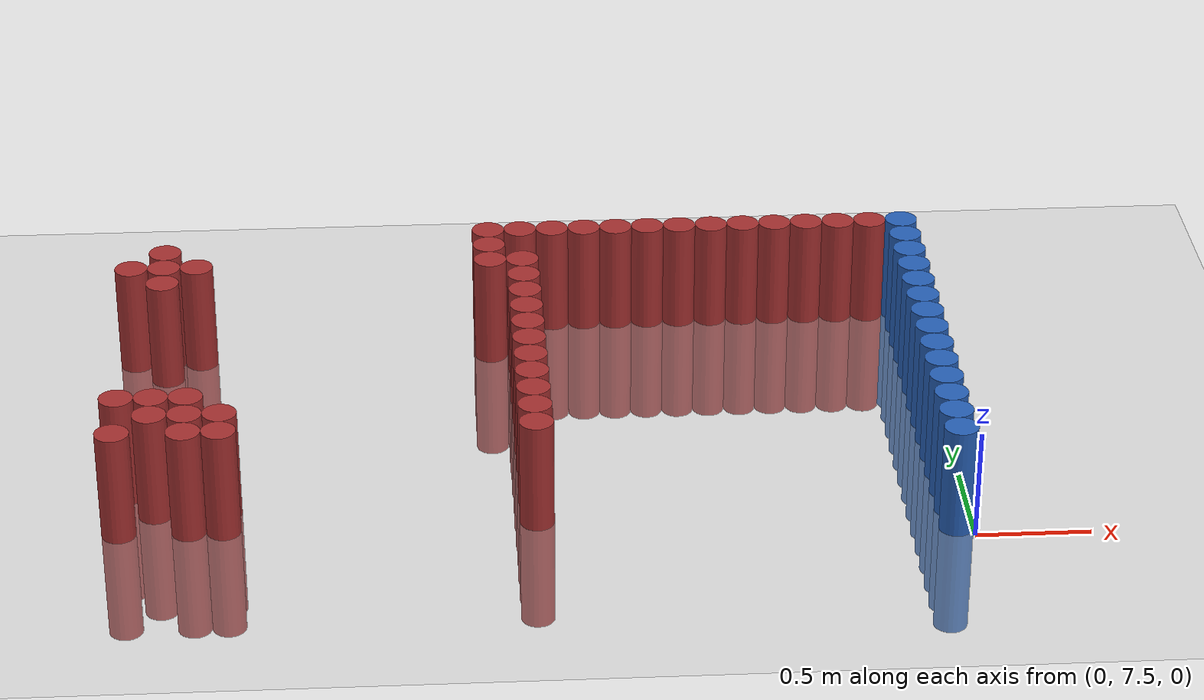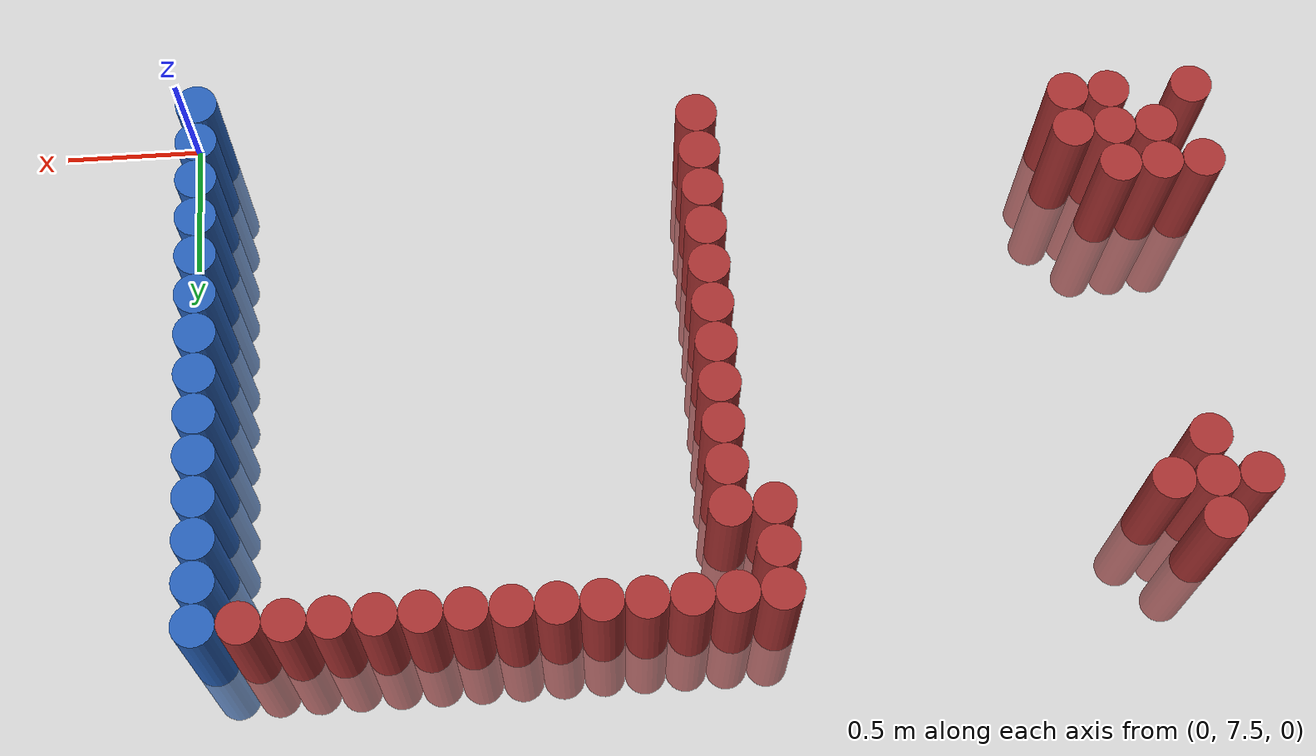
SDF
<sdf version="1.6">
 <world name="default">
  <model name="ground_plane">
   <static>1</static>
   <link name="link">
    <collision name="collision">
     <geometry><plane><normal>0 0 1</normal><size>100 100</size></plane></geometry>
     <surface><friction><ode><mu>100</mu><mu2>50</mu2></ode></friction></surface>
    </collision>
    <visual name="visual">
     <cast_shadows>0</cast_shadows>
     <geometry><plane><normal>0 0 1</normal><size>100 100</size></plane></geometry>
     <material>
      <script><uri>file://media/materials/scripts/gazebo.material</uri><name>Gazebo/Grey</name></script>
     </material>
    </visual>
   </link>
  </model>
  <model name="unit_cylinder_256">
   <static>1</static>
   <pose>-3.675000 7.725000 0.000000 0.000000 0.000000 0.000000</pose>
   <link name="link">
    <inertial>
     <mass>1</mass>
     <inertia><ixx>0.145833</ixx><ixy>0</ixy><ixz>0</ixz><iyy>0.145833</iyy><iyz>0</iyz><izz>0.125</izz></inertia>
    </inertial>
    <collision name="collision">
     <geometry><cylinder><radius>0.075000</radius><length>1</length></cylinder></geometry>
    </collision>
    <visual name="visual">
     <geometry><cylinder><radius>0.075000</radius><length>1</length></cylinder></geometry>
     <material>
      <ambient>0.648000 0.192000 0.192000 1</ambient>
      <diffuse>0.648000 0.192000 0.192000 1</diffuse>
     </material>
     <material>
      <script><name>Gazebo/Grey</name><uri>file://media/materials/scripts/gazebo.material</uri></script>
     </material>
    </visual>
   </link>
  </model>
  <model name="unit_cylinder_257">
   <static>1</static>
   <pose>-3.675000 8.025000 0.000000 0.000000 0.000000 0.000000</pose>
   <link name="link">
    <inertial>
     <mass>1</mass>
     <inertia><ixx>0.145833</ixx><ixy>0</ixy><ixz>0</ixz><iyy>0.145833</iyy><iyz>0</iyz><izz>0.125</izz></inertia>
    </inertial>
    <collision name="collision">
     <geometry><cylinder><radius>0.075000</radius><length>1</length></cylinder></geometry>
    </collision>
    <visual name="visual">
     <geometry><cylinder><radius>0.075000</radius><length>1</length></cylinder></geometry>
     <material>
      <ambient>0.648000 0.192000 0.192000 1</ambient>
      <diffuse>0.648000 0.192000 0.192000 1</diffuse>
     </material>
     <material>
      <script><name>Gazebo/Grey</name><uri>file://media/materials/scripts/gazebo.material</uri></script>
     </material>
    </visual>
   </link>
  </model>
  <model name="unit_cylinder_258">
   <static>1</static>
   <pose>-3.675000 9.225000 0.000000 0.000000 0.000000 0.000000</pose>
   <link name="link">
    <inertial>
     <mass>1</mass>
     <inertia><ixx>0.145833</ixx><ixy>0</ixy><ixz>0</ixz><iyy>0.145833</iyy><iyz>0</iyz><izz>0.125</izz></inertia>
    </inertial>
    <collision name="collision">
     <geometry><cylinder><radius>0.075000</radius><length>1</length></cylinder></geometry>
    </collision>
    <visual name="visual">
     <geometry><cylinder><radius>0.075000</radius><length>1</length></cylinder></geometry>
     <material>
      <ambient>0.648000 0.192000 0.192000 1</ambient>
      <diffuse>0.648000 0.192000 0.192000 1</diffuse>
     </material>
     <material>
      <script><name>Gazebo/Grey</name><uri>file://media/materials/scripts/gazebo.material</uri></script>
     </material>
    </visual>
   </link>
  </model>
  <model name="unit_cylinder_262">
   <static>1</static>
   <pose>-3.525000 7.875000 0.000000 0.000000 0.000000 0.000000</pose>
   <link name="link">
    <inertial>
     <mass>1</mass>
     <inertia><ixx>0.145833</ixx><ixy>0</ixy><ixz>0</ixz><iyy>0.145833</iyy><iyz>0</iyz><izz>0.125</izz></inertia>
    </inertial>
    <collision name="collision">
     <geometry><cylinder><radius>0.075000</radius><length>1</length></cylinder></geometry>
    </collision>
    <visual name="visual">
     <geometry><cylinder><radius>0.075000</radius><length>1</length></cylinder></geometry>
     <material>
      <ambient>0.648000 0.192000 0.192000 1</ambient>
      <diffuse>0.648000 0.192000 0.192000 1</diffuse>
     </material>
     <material>
      <script><name>Gazebo/Grey</name><uri>file://media/materials/scripts/gazebo.material</uri></script>
     </material>
    </visual>
   </link>
  </model>
  <model name="unit_cylinder_263">
   <static>1</static>
   <pose>-3.525000 8.025000 0.000000 0.000000 0.000000 0.000000</pose>
   <link name="link">
    <inertial>
     <mass>1</mass>
     <inertia><ixx>0.145833</ixx><ixy>0</ixy><ixz>0</ixz><iyy>0.145833</iyy><iyz>0</iyz><izz>0.125</izz></inertia>
    </inertial>
    <collision name="collision">
     <geometry><cylinder><radius>0.075000</radius><length>1</length></cylinder></geometry>
    </collision>
    <visual name="visual">
     <geometry><cylinder><radius>0.075000</radius><length>1</length></cylinder></geometry>
     <material>
      <ambient>0.648000 0.192000 0.192000 1</ambient>
      <diffuse>0.648000 0.192000 0.192000 1</diffuse>
     </material>
     <material>
      <script><name>Gazebo/Grey</name><uri>file://media/materials/scripts/gazebo.material</uri></script>
     </material>
    </visual>
   </link>
  </model>
  <model name="unit_cylinder_264">
   <static>1</static>
   <pose>-3.525000 9.075000 0.000000 0.000000 0.000000 0.000000</pose>
   <link name="link">
    <inertial>
     <mass>1</mass>
     <inertia><ixx>0.145833</ixx><ixy>0</ixy><ixz>0</ixz><iyy>0.145833</iyy><iyz>0</iyz><izz>0.125</izz></inertia>
    </inertial>
    <collision name="collision">
     <geometry><cylinder><radius>0.075000</radius><length>1</length></cylinder></geometry>
    </collision>
    <visual name="visual">
     <geometry><cylinder><radius>0.075000</radius><length>1</length></cylinder></geometry>
     <material>
      <ambient>0.648000 0.192000 0.192000 1</ambient>
      <diffuse>0.648000 0.192000 0.192000 1</diffuse>
     </material>
     <material>
      <script><name>Gazebo/Grey</name><uri>file://media/materials/scripts/gazebo.material</uri></script>
     </material>
    </visual>
   </link>
  </model>
  <model name="unit_cylinder_265">
   <static>1</static>
   <pose>-3.525000 9.225000 0.000000 0.000000 0.000000 0.000000</pose>
   <link name="link">
    <inertial>
     <mass>1</mass>
     <inertia><ixx>0.145833</ixx><ixy>0</ixy><ixz>0</ixz><iyy>0.145833</iyy><iyz>0</iyz><izz>0.125</izz></inertia>
    </inertial>
    <collision name="collision">
     <geometry><cylinder><radius>0.075000</radius><length>1</length></cylinder></geometry>
    </collision>
    <visual name="visual">
     <geometry><cylinder><radius>0.075000</radius><length>1</length></cylinder></geometry>
     <material>
      <ambient>0.648000 0.192000 0.192000 1</ambient>
      <diffuse>0.648000 0.192000 0.192000 1</diffuse>
     </material>
     <material>
      <script><name>Gazebo/Grey</name><uri>file://media/materials/scripts/gazebo.material</uri></script>
     </material>
    </visual>
   </link>
  </model>
  <model name="unit_cylinder_266">
   <static>1</static>
   <pose>-3.525000 9.375000 0.000000 0.000000 0.000000 0.000000</pose>
   <link name="link">
    <inertial>
     <mass>1</mass>
     <inertia><ixx>0.145833</ixx><ixy>0</ixy><ixz>0</ixz><iyy>0.145833</iyy><iyz>0</iyz><izz>0.125</izz></inertia>
    </inertial>
    <collision name="collision">
     <geometry><cylinder><radius>0.075000</radius><length>1</length></cylinder></geometry>
    </collision>
    <visual name="visual">
     <geometry><cylinder><radius>0.075000</radius><length>1</length></cylinder></geometry>
     <material>
      <ambient>0.648000 0.192000 0.192000 1</ambient>
      <diffuse>0.648000 0.192000 0.192000 1</diffuse>
     </material>
     <material>
      <script><name>Gazebo/Grey</name><uri>file://media/materials/scripts/gazebo.material</uri></script>
     </material>
    </visual>
   </link>
  </model>
  <model name="unit_cylinder_271">
   <static>1</static>
   <pose>-3.375000 7.725000 0.000000 0.000000 0.000000 0.000000</pose>
   <link name="link">
    <inertial>
     <mass>1</mass>
     <inertia><ixx>0.145833</ixx><ixy>0</ixy><ixz>0</ixz><iyy>0.145833</iyy><iyz>0</iyz><izz>0.125</izz></inertia>
    </inertial>
    <collision name="collision">
     <geometry><cylinder><radius>0.075000</radius><length>1</length></cylinder></geometry>
    </collision>
    <visual name="visual">
     <geometry><cylinder><radius>0.075000</radius><length>1</length></cylinder></geometry>
     <material>
      <ambient>0.648000 0.192000 0.192000 1</ambient>
      <diffuse>0.648000 0.192000 0.192000 1</diffuse>
     </material>
     <material>
      <script><name>Gazebo/Grey</name><uri>file://media/materials/scripts/gazebo.material</uri></script>
     </material>
    </visual>
   </link>
  </model>
  <model name="unit_cylinder_272">
   <static>1</static>
   <pose>-3.375000 7.875000 0.000000 0.000000 0.000000 0.000000</pose>
   <link name="link">
    <inertial>
     <mass>1</mass>
     <inertia><ixx>0.145833</ixx><ixy>0</ixy><ixz>0</ixz><iyy>0.145833</iyy><iyz>0</iyz><izz>0.125</izz></inertia>
    </inertial>
    <collision name="collision">
     <geometry><cylinder><radius>0.075000</radius><length>1</length></cylinder></geometry>
    </collision>
    <visual name="visual">
     <geometry><cylinder><radius>0.075000</radius><length>1</length></cylinder></geometry>
     <material>
      <ambient>0.648000 0.192000 0.192000 1</ambient>
      <diffuse>0.648000 0.192000 0.192000 1</diffuse>
     </material>
     <material>
      <script><name>Gazebo/Grey</name><uri>file://media/materials/scripts/gazebo.material</uri></script>
     </material>
    </visual>
   </link>
  </model>
  <model name="unit_cylinder_273">
   <static>1</static>
   <pose>-3.375000 8.025000 0.000000 0.000000 0.000000 0.000000</pose>
   <link name="link">
    <inertial>
     <mass>1</mass>
     <inertia><ixx>0.145833</ixx><ixy>0</ixy><ixz>0</ixz><iyy>0.145833</iyy><iyz>0</iyz><izz>0.125</izz></inertia>
    </inertial>
    <collision name="collision">
     <geometry><cylinder><radius>0.075000</radius><length>1</length></cylinder></geometry>
    </collision>
    <visual name="visual">
     <geometry><cylinder><radius>0.075000</radius><length>1</length></cylinder></geometry>
     <material>
      <ambient>0.648000 0.192000 0.192000 1</ambient>
      <diffuse>0.648000 0.192000 0.192000 1</diffuse>
     </material>
     <material>
      <script><name>Gazebo/Grey</name><uri>file://media/materials/scripts/gazebo.material</uri></script>
     </material>
    </visual>
   </link>
  </model>
  <model name="unit_cylinder_274">
   <static>1</static>
   <pose>-3.375000 9.225000 0.000000 0.000000 0.000000 0.000000</pose>
   <link name="link">
    <inertial>
     <mass>1</mass>
     <inertia><ixx>0.145833</ixx><ixy>0</ixy><ixz>0</ixz><iyy>0.145833</iyy><iyz>0</iyz><izz>0.125</izz></inertia>
    </inertial>
    <collision name="collision">
     <geometry><cylinder><radius>0.075000</radius><length>1</length></cylinder></geometry>
    </collision>
    <visual name="visual">
     <geometry><cylinder><radius>0.075000</radius><length>1</length></cylinder></geometry>
     <material>
      <ambient>0.648000 0.192000 0.192000 1</ambient>
      <diffuse>0.648000 0.192000 0.192000 1</diffuse>
     </material>
     <material>
      <script><name>Gazebo/Grey</name><uri>file://media/materials/scripts/gazebo.material</uri></script>
     </material>
    </visual>
   </link>
  </model>
  <model name="unit_cylinder_278">
   <static>1</static>
   <pose>-3.225000 7.725000 0.000000 0.000000 0.000000 0.000000</pose>
   <link name="link">
    <inertial>
     <mass>1</mass>
     <inertia><ixx>0.145833</ixx><ixy>0</ixy><ixz>0</ixz><iyy>0.145833</iyy><iyz>0</iyz><izz>0.125</izz></inertia>
    </inertial>
    <collision name="collision">
     <geometry><cylinder><radius>0.075000</radius><length>1</length></cylinder></geometry>
    </collision>
    <visual name="visual">
     <geometry><cylinder><radius>0.075000</radius><length>1</length></cylinder></geometry>
     <material>
      <ambient>0.648000 0.192000 0.192000 1</ambient>
      <diffuse>0.648000 0.192000 0.192000 1</diffuse>
     </material>
     <material>
      <script><name>Gazebo/Grey</name><uri>file://media/materials/scripts/gazebo.material</uri></script>
     </material>
    </visual>
   </link>
  </model>
  <model name="unit_cylinder_279">
   <static>1</static>
   <pose>-3.225000 7.875000 0.000000 0.000000 0.000000 0.000000</pose>
   <link name="link">
    <inertial>
     <mass>1</mass>
     <inertia><ixx>0.145833</ixx><ixy>0</ixy><ixz>0</ixz><iyy>0.145833</iyy><iyz>0</iyz><izz>0.125</izz></inertia>
    </inertial>
    <collision name="collision">
     <geometry><cylinder><radius>0.075000</radius><length>1</length></cylinder></geometry>
    </collision>
    <visual name="visual">
     <geometry><cylinder><radius>0.075000</radius><length>1</length></cylinder></geometry>
     <material>
      <ambient>0.648000 0.192000 0.192000 1</ambient>
      <diffuse>0.648000 0.192000 0.192000 1</diffuse>
     </material>
     <material>
      <script><name>Gazebo/Grey</name><uri>file://media/materials/scripts/gazebo.material</uri></script>
     </material>
    </visual>
   </link>
  </model>
  <model name="unit_cylinder_298">
   <static>1</static>
   <pose>-2.025000 9.225000 0.000000 0.000000 0.000000 0.000000</pose>
   <link name="link">
    <inertial>
     <mass>1</mass>
     <inertia><ixx>0.145833</ixx><ixy>0</ixy><ixz>0</ixz><iyy>0.145833</iyy><iyz>0</iyz><izz>0.125</izz></inertia>
    </inertial>
    <collision name="collision">
     <geometry><cylinder><radius>0.075000</radius><length>1</length></cylinder></geometry>
    </collision>
    <visual name="visual">
     <geometry><cylinder><radius>0.075000</radius><length>1</length></cylinder></geometry>
     <material>
      <ambient>0.648000 0.192000 0.192000 1</ambient>
      <diffuse>0.648000 0.192000 0.192000 1</diffuse>
     </material>
     <material>
      <script><name>Gazebo/Grey</name><uri>file://media/materials/scripts/gazebo.material</uri></script>
     </material>
    </visual>
   </link>
  </model>
  <model name="unit_cylinder_299">
   <static>1</static>
   <pose>-2.025000 9.375000 0.000000 0.000000 0.000000 0.000000</pose>
   <link name="link">
    <inertial>
     <mass>1</mass>
     <inertia><ixx>0.145833</ixx><ixy>0</ixy><ixz>0</ixz><iyy>0.145833</iyy><iyz>0</iyz><izz>0.125</izz></inertia>
    </inertial>
    <collision name="collision">
     <geometry><cylinder><radius>0.075000</radius><length>1</length></cylinder></geometry>
    </collision>
    <visual name="visual">
     <geometry><cylinder><radius>0.075000</radius><length>1</length></cylinder></geometry>
     <material>
      <ambient>0.648000 0.192000 0.192000 1</ambient>
      <diffuse>0.648000 0.192000 0.192000 1</diffuse>
     </material>
     <material>
      <script><name>Gazebo/Grey</name><uri>file://media/materials/scripts/gazebo.material</uri></script>
     </material>
    </visual>
   </link>
  </model>
  <model name="unit_cylinder_300">
   <static>1</static>
   <pose>-2.025000 9.525000 0.000000 0.000000 0.000000 0.000000</pose>
   <link name="link">
    <inertial>
     <mass>1</mass>
     <inertia><ixx>0.145833</ixx><ixy>0</ixy><ixz>0</ixz><iyy>0.145833</iyy><iyz>0</iyz><izz>0.125</izz></inertia>
    </inertial>
    <collision name="collision">
     <geometry><cylinder><radius>0.075000</radius><length>1</length></cylinder></geometry>
    </collision>
    <visual name="visual">
     <geometry><cylinder><radius>0.075000</radius><length>1</length></cylinder></geometry>
     <material>
      <ambient>0.648000 0.192000 0.192000 1</ambient>
      <diffuse>0.648000 0.192000 0.192000 1</diffuse>
     </material>
     <material>
      <script><name>Gazebo/Grey</name><uri>file://media/materials/scripts/gazebo.material</uri></script>
     </material>
    </visual>
   </link>
  </model>
  <model name="unit_cylinder_314">
   <static>1</static>
   <pose>-1.875000 7.725000 0.000000 0.000000 0.000000 0.000000</pose>
   <link name="link">
    <inertial>
     <mass>1</mass>
     <inertia><ixx>0.145833</ixx><ixy>0</ixy><ixz>0</ixz><iyy>0.145833</iyy><iyz>0</iyz><izz>0.125</izz></inertia>
    </inertial>
    <collision name="collision">
     <geometry><cylinder><radius>0.075000</radius><length>1</length></cylinder></geometry>
    </collision>
    <visual name="visual">
     <geometry><cylinder><radius>0.075000</radius><length>1</length></cylinder></geometry>
     <material>
      <ambient>0.648000 0.192000 0.192000 1</ambient>
      <diffuse>0.648000 0.192000 0.192000 1</diffuse>
     </material>
     <material>
      <script><name>Gazebo/Grey</name><uri>file://media/materials/scripts/gazebo.material</uri></script>
     </material>
    </visual>
   </link>
  </model>
  <model name="unit_cylinder_315">
   <static>1</static>
   <pose>-1.875000 7.875000 0.000000 0.000000 0.000000 0.000000</pose>
   <link name="link">
    <inertial>
     <mass>1</mass>
     <inertia><ixx>0.145833</ixx><ixy>0</ixy><ixz>0</ixz><iyy>0.145833</iyy><iyz>0</iyz><izz>0.125</izz></inertia>
    </inertial>
    <collision name="collision">
     <geometry><cylinder><radius>0.075000</radius><length>1</length></cylinder></geometry>
    </collision>
    <visual name="visual">
     <geometry><cylinder><radius>0.075000</radius><length>1</length></cylinder></geometry>
     <material>
      <ambient>0.648000 0.192000 0.192000 1</ambient>
      <diffuse>0.648000 0.192000 0.192000 1</diffuse>
     </material>
     <material>
      <script><name>Gazebo/Grey</name><uri>file://media/materials/scripts/gazebo.material</uri></script>
     </material>
    </visual>
   </link>
  </model>
  <model name="unit_cylinder_316">
   <static>1</static>
   <pose>-1.875000 8.025000 0.000000 0.000000 0.000000 0.000000</pose>
   <link name="link">
    <inertial>
     <mass>1</mass>
     <inertia><ixx>0.145833</ixx><ixy>0</ixy><ixz>0</ixz><iyy>0.145833</iyy><iyz>0</iyz><izz>0.125</izz></inertia>
    </inertial>
    <collision name="collision">
     <geometry><cylinder><radius>0.075000</radius><length>1</length></cylinder></geometry>
    </collision>
    <visual name="visual">
     <geometry><cylinder><radius>0.075000</radius><length>1</length></cylinder></geometry>
     <material>
      <ambient>0.648000 0.192000 0.192000 1</ambient>
      <diffuse>0.648000 0.192000 0.192000 1</diffuse>
     </material>
     <material>
      <script><name>Gazebo/Grey</name><uri>file://media/materials/scripts/gazebo.material</uri></script>
     </material>
    </visual>
   </link>
  </model>
  <model name="unit_cylinder_317">
   <static>1</static>
   <pose>-1.875000 8.175000 0.000000 0.000000 0.000000 0.000000</pose>
   <link name="link">
    <inertial>
     <mass>1</mass>
     <inertia><ixx>0.145833</ixx><ixy>0</ixy><ixz>0</ixz><iyy>0.145833</iyy><iyz>0</iyz><izz>0.125</izz></inertia>
    </inertial>
    <collision name="collision">
     <geometry><cylinder><radius>0.075000</radius><length>1</length></cylinder></geometry>
    </collision>
    <visual name="visual">
     <geometry><cylinder><radius>0.075000</radius><length>1</length></cylinder></geometry>
     <material>
      <ambient>0.648000 0.192000 0.192000 1</ambient>
      <diffuse>0.648000 0.192000 0.192000 1</diffuse>
     </material>
     <material>
      <script><name>Gazebo/Grey</name><uri>file://media/materials/scripts/gazebo.material</uri></script>
     </material>
    </visual>
   </link>
  </model>
  <model name="unit_cylinder_318">
   <static>1</static>
   <pose>-1.875000 8.325000 0.000000 0.000000 0.000000 0.000000</pose>
   <link name="link">
    <inertial>
     <mass>1</mass>
     <inertia><ixx>0.145833</ixx><ixy>0</ixy><ixz>0</ixz><iyy>0.145833</iyy><iyz>0</iyz><izz>0.125</izz></inertia>
    </inertial>
    <collision name="collision">
     <geometry><cylinder><radius>0.075000</radius><length>1</length></cylinder></geometry>
    </collision>
    <visual name="visual">
     <geometry><cylinder><radius>0.075000</radius><length>1</length></cylinder></geometry>
     <material>
      <ambient>0.648000 0.192000 0.192000 1</ambient>
      <diffuse>0.648000 0.192000 0.192000 1</diffuse>
     </material>
     <material>
      <script><name>Gazebo/Grey</name><uri>file://media/materials/scripts/gazebo.material</uri></script>
     </material>
    </visual>
   </link>
  </model>
  <model name="unit_cylinder_319">
   <static>1</static>
   <pose>-1.875000 8.475000 0.000000 0.000000 0.000000 0.000000</pose>
   <link name="link">
    <inertial>
     <mass>1</mass>
     <inertia><ixx>0.145833</ixx><ixy>0</ixy><ixz>0</ixz><iyy>0.145833</iyy><iyz>0</iyz><izz>0.125</izz></inertia>
    </inertial>
    <collision name="collision">
     <geometry><cylinder><radius>0.075000</radius><length>1</length></cylinder></geometry>
    </collision>
    <visual name="visual">
     <geometry><cylinder><radius>0.075000</radius><length>1</length></cylinder></geometry>
     <material>
      <ambient>0.648000 0.192000 0.192000 1</ambient>
      <diffuse>0.648000 0.192000 0.192000 1</diffuse>
     </material>
     <material>
      <script><name>Gazebo/Grey</name><uri>file://media/materials/scripts/gazebo.material</uri></script>
     </material>
    </visual>
   </link>
  </model>
  <model name="unit_cylinder_320">
   <static>1</static>
   <pose>-1.875000 8.625000 0.000000 0.000000 0.000000 0.000000</pose>
   <link name="link">
    <inertial>
     <mass>1</mass>
     <inertia><ixx>0.145833</ixx><ixy>0</ixy><ixz>0</ixz><iyy>0.145833</iyy><iyz>0</iyz><izz>0.125</izz></inertia>
    </inertial>
    <collision name="collision">
     <geometry><cylinder><radius>0.075000</radius><length>1</length></cylinder></geometry>
    </collision>
    <visual name="visual">
     <geometry><cylinder><radius>0.075000</radius><length>1</length></cylinder></geometry>
     <material>
      <ambient>0.648000 0.192000 0.192000 1</ambient>
      <diffuse>0.648000 0.192000 0.192000 1</diffuse>
     </material>
     <material>
      <script><name>Gazebo/Grey</name><uri>file://media/materials/scripts/gazebo.material</uri></script>
     </material>
    </visual>
   </link>
  </model>
  <model name="unit_cylinder_321">
   <static>1</static>
   <pose>-1.875000 8.775000 0.000000 0.000000 0.000000 0.000000</pose>
   <link name="link">
    <inertial>
     <mass>1</mass>
     <inertia><ixx>0.145833</ixx><ixy>0</ixy><ixz>0</ixz><iyy>0.145833</iyy><iyz>0</iyz><izz>0.125</izz></inertia>
    </inertial>
    <collision name="collision">
     <geometry><cylinder><radius>0.075000</radius><length>1</length></cylinder></geometry>
    </collision>
    <visual name="visual">
     <geometry><cylinder><radius>0.075000</radius><length>1</length></cylinder></geometry>
     <material>
      <ambient>0.648000 0.192000 0.192000 1</ambient>
      <diffuse>0.648000 0.192000 0.192000 1</diffuse>
     </material>
     <material>
      <script><name>Gazebo/Grey</name><uri>file://media/materials/scripts/gazebo.material</uri></script>
     </material>
    </visual>
   </link>
  </model>
  <model name="unit_cylinder_322">
   <static>1</static>
   <pose>-1.875000 8.925000 0.000000 0.000000 0.000000 0.000000</pose>
   <link name="link">
    <inertial>
     <mass>1</mass>
     <inertia><ixx>0.145833</ixx><ixy>0</ixy><ixz>0</ixz><iyy>0.145833</iyy><iyz>0</iyz><izz>0.125</izz></inertia>
    </inertial>
    <collision name="collision">
     <geometry><cylinder><radius>0.075000</radius><length>1</length></cylinder></geometry>
    </collision>
    <visual name="visual">
     <geometry><cylinder><radius>0.075000</radius><length>1</length></cylinder></geometry>
     <material>
      <ambient>0.648000 0.192000 0.192000 1</ambient>
      <diffuse>0.648000 0.192000 0.192000 1</diffuse>
     </material>
     <material>
      <script><name>Gazebo/Grey</name><uri>file://media/materials/scripts/gazebo.material</uri></script>
     </material>
    </visual>
   </link>
  </model>
  <model name="unit_cylinder_323">
   <static>1</static>
   <pose>-1.875000 9.075000 0.000000 0.000000 0.000000 0.000000</pose>
   <link name="link">
    <inertial>
     <mass>1</mass>
     <inertia><ixx>0.145833</ixx><ixy>0</ixy><ixz>0</ixz><iyy>0.145833</iyy><iyz>0</iyz><izz>0.125</izz></inertia>
    </inertial>
    <collision name="collision">
     <geometry><cylinder><radius>0.075000</radius><length>1</length></cylinder></geometry>
    </collision>
    <visual name="visual">
     <geometry><cylinder><radius>0.075000</radius><length>1</length></cylinder></geometry>
     <material>
      <ambient>0.648000 0.192000 0.192000 1</ambient>
      <diffuse>0.648000 0.192000 0.192000 1</diffuse>
     </material>
     <material>
      <script><name>Gazebo/Grey</name><uri>file://media/materials/scripts/gazebo.material</uri></script>
     </material>
    </visual>
   </link>
  </model>
  <model name="unit_cylinder_324">
   <static>1</static>
   <pose>-1.875000 9.225000 0.000000 0.000000 0.000000 0.000000</pose>
   <link name="link">
    <inertial>
     <mass>1</mass>
     <inertia><ixx>0.145833</ixx><ixy>0</ixy><ixz>0</ixz><iyy>0.145833</iyy><iyz>0</iyz><izz>0.125</izz></inertia>
    </inertial>
    <collision name="collision">
     <geometry><cylinder><radius>0.075000</radius><length>1</length></cylinder></geometry>
    </collision>
    <visual name="visual">
     <geometry><cylinder><radius>0.075000</radius><length>1</length></cylinder></geometry>
     <material>
      <ambient>0.648000 0.192000 0.192000 1</ambient>
      <diffuse>0.648000 0.192000 0.192000 1</diffuse>
     </material>
     <material>
      <script><name>Gazebo/Grey</name><uri>file://media/materials/scripts/gazebo.material</uri></script>
     </material>
    </visual>
   </link>
  </model>
  <model name="unit_cylinder_325">
   <static>1</static>
   <pose>-1.875000 9.525000 0.000000 0.000000 0.000000 0.000000</pose>
   <link name="link">
    <inertial>
     <mass>1</mass>
     <inertia><ixx>0.145833</ixx><ixy>0</ixy><ixz>0</ixz><iyy>0.145833</iyy><iyz>0</iyz><izz>0.125</izz></inertia>
    </inertial>
    <collision name="collision">
     <geometry><cylinder><radius>0.075000</radius><length>1</length></cylinder></geometry>
    </collision>
    <visual name="visual">
     <geometry><cylinder><radius>0.075000</radius><length>1</length></cylinder></geometry>
     <material>
      <ambient>0.648000 0.192000 0.192000 1</ambient>
      <diffuse>0.648000 0.192000 0.192000 1</diffuse>
     </material>
     <material>
      <script><name>Gazebo/Grey</name><uri>file://media/materials/scripts/gazebo.material</uri></script>
     </material>
    </visual>
   </link>
  </model>
  <model name="unit_cylinder_327">
   <static>1</static>
   <pose>-1.725000 9.525000 0.000000 0.000000 0.000000 0.000000</pose>
   <link name="link">
    <inertial>
     <mass>1</mass>
     <inertia><ixx>0.145833</ixx><ixy>0</ixy><ixz>0</ixz><iyy>0.145833</iyy><iyz>0</iyz><izz>0.125</izz></inertia>
    </inertial>
    <collision name="collision">
     <geometry><cylinder><radius>0.075000</radius><length>1</length></cylinder></geometry>
    </collision>
    <visual name="visual">
     <geometry><cylinder><radius>0.075000</radius><length>1</length></cylinder></geometry>
     <material>
      <ambient>0.648000 0.192000 0.192000 1</ambient>
      <diffuse>0.648000 0.192000 0.192000 1</diffuse>
     </material>
     <material>
      <script><name>Gazebo/Grey</name><uri>file://media/materials/scripts/gazebo.material</uri></script>
     </material>
    </visual>
   </link>
  </model>
  <model name="unit_cylinder_329">
   <static>1</static>
   <pose>-1.575000 9.525000 0.000000 0.000000 0.000000 0.000000</pose>
   <link name="link">
    <inertial>
     <mass>1</mass>
     <inertia><ixx>0.145833</ixx><ixy>0</ixy><ixz>0</ixz><iyy>0.145833</iyy><iyz>0</iyz><izz>0.125</izz></inertia>
    </inertial>
    <collision name="collision">
     <geometry><cylinder><radius>0.075000</radius><length>1</length></cylinder></geometry>
    </collision>
    <visual name="visual">
     <geometry><cylinder><radius>0.075000</radius><length>1</length></cylinder></geometry>
     <material>
      <ambient>0.648000 0.192000 0.192000 1</ambient>
      <diffuse>0.648000 0.192000 0.192000 1</diffuse>
     </material>
     <material>
      <script><name>Gazebo/Grey</name><uri>file://media/materials/scripts/gazebo.material</uri></script>
     </material>
    </visual>
   </link>
  </model>
  <model name="unit_cylinder_331">
   <static>1</static>
   <pose>-1.425000 9.525000 0.000000 0.000000 0.000000 0.000000</pose>
   <link name="link">
    <inertial>
     <mass>1</mass>
     <inertia><ixx>0.145833</ixx><ixy>0</ixy><ixz>0</ixz><iyy>0.145833</iyy><iyz>0</iyz><izz>0.125</izz></inertia>
    </inertial>
    <collision name="collision">
     <geometry><cylinder><radius>0.075000</radius><length>1</length></cylinder></geometry>
    </collision>
    <visual name="visual">
     <geometry><cylinder><radius>0.075000</radius><length>1</length></cylinder></geometry>
     <material>
      <ambient>0.648000 0.192000 0.192000 1</ambient>
      <diffuse>0.648000 0.192000 0.192000 1</diffuse>
     </material>
     <material>
      <script><name>Gazebo/Grey</name><uri>file://media/materials/scripts/gazebo.material</uri></script>
     </material>
    </visual>
   </link>
  </model>
  <model name="unit_cylinder_333">
   <static>1</static>
   <pose>-1.275000 9.525000 0.000000 0.000000 0.000000 0.000000</pose>
   <link name="link">
    <inertial>
     <mass>1</mass>
     <inertia><ixx>0.145833</ixx><ixy>0</ixy><ixz>0</ixz><iyy>0.145833</iyy><iyz>0</iyz><izz>0.125</izz></inertia>
    </inertial>
    <collision name="collision">
     <geometry><cylinder><radius>0.075000</radius><length>1</length></cylinder></geometry>
    </collision>
    <visual name="visual">
     <geometry><cylinder><radius>0.075000</radius><length>1</length></cylinder></geometry>
     <material>
      <ambient>0.648000 0.192000 0.192000 1</ambient>
      <diffuse>0.648000 0.192000 0.192000 1</diffuse>
     </material>
     <material>
      <script><name>Gazebo/Grey</name><uri>file://media/materials/scripts/gazebo.material</uri></script>
     </material>
    </visual>
   </link>
  </model>
  <model name="unit_cylinder_335">
   <static>1</static>
   <pose>-1.125000 9.525000 0.000000 0.000000 0.000000 0.000000</pose>
   <link name="link">
    <inertial>
     <mass>1</mass>
     <inertia><ixx>0.145833</ixx><ixy>0</ixy><ixz>0</ixz><iyy>0.145833</iyy><iyz>0</iyz><izz>0.125</izz></inertia>
    </inertial>
    <collision name="collision">
     <geometry><cylinder><radius>0.075000</radius><length>1</length></cylinder></geometry>
    </collision>
    <visual name="visual">
     <geometry><cylinder><radius>0.075000</radius><length>1</length></cylinder></geometry>
     <material>
      <ambient>0.648000 0.192000 0.192000 1</ambient>
      <diffuse>0.648000 0.192000 0.192000 1</diffuse>
     </material>
     <material>
      <script><name>Gazebo/Grey</name><uri>file://media/materials/scripts/gazebo.material</uri></script>
     </material>
    </visual>
   </link>
  </model>
  <model name="unit_cylinder_337">
   <static>1</static>
   <pose>-0.975000 9.525000 0.000000 0.000000 0.000000 0.000000</pose>
   <link name="link">
    <inertial>
     <mass>1</mass>
     <inertia><ixx>0.145833</ixx><ixy>0</ixy><ixz>0</ixz><iyy>0.145833</iyy><iyz>0</iyz><izz>0.125</izz></inertia>
    </inertial>
    <collision name="collision">
     <geometry><cylinder><radius>0.075000</radius><length>1</length></cylinder></geometry>
    </collision>
    <visual name="visual">
     <geometry><cylinder><radius>0.075000</radius><length>1</length></cylinder></geometry>
     <material>
      <ambient>0.648000 0.192000 0.192000 1</ambient>
      <diffuse>0.648000 0.192000 0.192000 1</diffuse>
     </material>
     <material>
      <script><name>Gazebo/Grey</name><uri>file://media/materials/scripts/gazebo.material</uri></script>
     </material>
    </visual>
   </link>
  </model>
  <model name="unit_cylinder_339">
   <static>1</static>
   <pose>-0.825000 9.525000 0.000000 0.000000 0.000000 0.000000</pose>
   <link name="link">
    <inertial>
     <mass>1</mass>
     <inertia><ixx>0.145833</ixx><ixy>0</ixy><ixz>0</ixz><iyy>0.145833</iyy><iyz>0</iyz><izz>0.125</izz></inertia>
    </inertial>
    <collision name="collision">
     <geometry><cylinder><radius>0.075000</radius><length>1</length></cylinder></geometry>
    </collision>
    <visual name="visual">
     <geometry><cylinder><radius>0.075000</radius><length>1</length></cylinder></geometry>
     <material>
      <ambient>0.648000 0.192000 0.192000 1</ambient>
      <diffuse>0.648000 0.192000 0.192000 1</diffuse>
     </material>
     <material>
      <script><name>Gazebo/Grey</name><uri>file://media/materials/scripts/gazebo.material</uri></script>
     </material>
    </visual>
   </link>
  </model>
  <model name="unit_cylinder_341">
   <static>1</static>
   <pose>-0.675000 9.525000 0.000000 0.000000 0.000000 0.000000</pose>
   <link name="link">
    <inertial>
     <mass>1</mass>
     <inertia><ixx>0.145833</ixx><ixy>0</ixy><ixz>0</ixz><iyy>0.145833</iyy><iyz>0</iyz><izz>0.125</izz></inertia>
    </inertial>
    <collision name="collision">
     <geometry><cylinder><radius>0.075000</radius><length>1</length></cylinder></geometry>
    </collision>
    <visual name="visual">
     <geometry><cylinder><radius>0.075000</radius><length>1</length></cylinder></geometry>
     <material>
      <ambient>0.648000 0.192000 0.192000 1</ambient>
      <diffuse>0.648000 0.192000 0.192000 1</diffuse>
     </material>
     <material>
      <script><name>Gazebo/Grey</name><uri>file://media/materials/scripts/gazebo.material</uri></script>
     </material>
    </visual>
   </link>
  </model>
  <model name="unit_cylinder_343">
   <static>1</static>
   <pose>-0.525000 9.525000 0.000000 0.000000 0.000000 0.000000</pose>
   <link name="link">
    <inertial>
     <mass>1</mass>
     <inertia><ixx>0.145833</ixx><ixy>0</ixy><ixz>0</ixz><iyy>0.145833</iyy><iyz>0</iyz><izz>0.125</izz></inertia>
    </inertial>
    <collision name="collision">
     <geometry><cylinder><radius>0.075000</radius><length>1</length></cylinder></geometry>
    </collision>
    <visual name="visual">
     <geometry><cylinder><radius>0.075000</radius><length>1</length></cylinder></geometry>
     <material>
      <ambient>0.648000 0.192000 0.192000 1</ambient>
      <diffuse>0.648000 0.192000 0.192000 1</diffuse>
     </material>
     <material>
      <script><name>Gazebo/Grey</name><uri>file://media/materials/scripts/gazebo.material</uri></script>
     </material>
    </visual>
   </link>
  </model>
  <model name="unit_cylinder_345">
   <static>1</static>
   <pose>-0.375000 9.525000 0.000000 0.000000 0.000000 0.000000</pose>
   <link name="link">
    <inertial>
     <mass>1</mass>
     <inertia><ixx>0.145833</ixx><ixy>0</ixy><ixz>0</ixz><iyy>0.145833</iyy><iyz>0</iyz><izz>0.125</izz></inertia>
    </inertial>
    <collision name="collision">
     <geometry><cylinder><radius>0.075000</radius><length>1</length></cylinder></geometry>
    </collision>
    <visual name="visual">
     <geometry><cylinder><radius>0.075000</radius><length>1</length></cylinder></geometry>
     <material>
      <ambient>0.648000 0.192000 0.192000 1</ambient>
      <diffuse>0.648000 0.192000 0.192000 1</diffuse>
     </material>
     <material>
      <script><name>Gazebo/Grey</name><uri>file://media/materials/scripts/gazebo.material</uri></script>
     </material>
    </visual>
   </link>
  </model>
  <model name="unit_cylinder_347">
   <static>1</static>
   <pose>-0.225000 9.525000 0.000000 0.000000 0.000000 0.000000</pose>
   <link name="link">
    <inertial>
     <mass>1</mass>
     <inertia><ixx>0.145833</ixx><ixy>0</ixy><ixz>0</ixz><iyy>0.145833</iyy><iyz>0</iyz><izz>0.125</izz></inertia>
    </inertial>
    <collision name="collision">
     <geometry><cylinder><radius>0.075000</radius><length>1</length></cylinder></geometry>
    </collision>
    <visual name="visual">
     <geometry><cylinder><radius>0.075000</radius><length>1</length></cylinder></geometry>
     <material>
      <ambient>0.648000 0.192000 0.192000 1</ambient>
      <diffuse>0.648000 0.192000 0.192000 1</diffuse>
     </material>
     <material>
      <script><name>Gazebo/Grey</name><uri>file://media/materials/scripts/gazebo.material</uri></script>
     </material>
    </visual>
   </link>
  </model>
  <model name="unit_cylinder_364">
   <static>1</static>
   <pose>-0.075000 7.575000 0.000000 0.000000 0.000000 0.000000</pose>
   <link name="link">
    <inertial>
     <mass>1</mass>
     <inertia><ixx>0.145833</ixx><ixy>0</ixy><ixz>0</ixz><iyy>0.145833</iyy><iyz>0</iyz><izz>0.125</izz></inertia>
    </inertial>
    <collision name="collision">
     <geometry><cylinder><radius>0.075000</radius><length>1</length></cylinder></geometry>
    </collision>
    <visual name="visual">
     <geometry><cylinder><radius>0.075000</radius><length>1</length></cylinder></geometry>
     <material>
      <ambient>0.152000 0.379000 0.720000 1</ambient>
      <diffuse>0.152000 0.379000 0.720000 1</diffuse>
     </material>
     <material>
      <script><name>Gazebo/Grey</name><uri>file://media/materials/scripts/gazebo.material</uri></script>
     </material>
    </visual>
   </link>
  </model>
  <model name="unit_cylinder_365">
   <static>1</static>
   <pose>-0.075000 7.725000 0.000000 0.000000 0.000000 0.000000</pose>
   <link name="link">
    <inertial>
     <mass>1</mass>
     <inertia><ixx>0.145833</ixx><ixy>0</ixy><ixz>0</ixz><iyy>0.145833</iyy><iyz>0</iyz><izz>0.125</izz></inertia>
    </inertial>
    <collision name="collision">
     <geometry><cylinder><radius>0.075000</radius><length>1</length></cylinder></geometry>
    </collision>
    <visual name="visual">
     <geometry><cylinder><radius>0.075000</radius><length>1</length></cylinder></geometry>
     <material>
      <ambient>0.152000 0.379000 0.720000 1</ambient>
      <diffuse>0.152000 0.379000 0.720000 1</diffuse>
     </material>
     <material>
      <script><name>Gazebo/Grey</name><uri>file://media/materials/scripts/gazebo.material</uri></script>
     </material>
    </visual>
   </link>
  </model>
  <model name="unit_cylinder_366">
   <static>1</static>
   <pose>-0.075000 7.875000 0.000000 0.000000 0.000000 0.000000</pose>
   <link name="link">
    <inertial>
     <mass>1</mass>
     <inertia><ixx>0.145833</ixx><ixy>0</ixy><ixz>0</ixz><iyy>0.145833</iyy><iyz>0</iyz><izz>0.125</izz></inertia>
    </inertial>
    <collision name="collision">
     <geometry><cylinder><radius>0.075000</radius><length>1</length></cylinder></geometry>
    </collision>
    <visual name="visual">
     <geometry><cylinder><radius>0.075000</radius><length>1</length></cylinder></geometry>
     <material>
      <ambient>0.152000 0.379000 0.720000 1</ambient>
      <diffuse>0.152000 0.379000 0.720000 1</diffuse>
     </material>
     <material>
      <script><name>Gazebo/Grey</name><uri>file://media/materials/scripts/gazebo.material</uri></script>
     </material>
    </visual>
   </link>
  </model>
  <model name="unit_cylinder_367">
   <static>1</static>
   <pose>-0.075000 8.025000 0.000000 0.000000 0.000000 0.000000</pose>
   <link name="link">
    <inertial>
     <mass>1</mass>
     <inertia><ixx>0.145833</ixx><ixy>0</ixy><ixz>0</ixz><iyy>0.145833</iyy><iyz>0</iyz><izz>0.125</izz></inertia>
    </inertial>
    <collision name="collision">
     <geometry><cylinder><radius>0.075000</radius><length>1</length></cylinder></geometry>
    </collision>
    <visual name="visual">
     <geometry><cylinder><radius>0.075000</radius><length>1</length></cylinder></geometry>
     <material>
      <ambient>0.152000 0.379000 0.720000 1</ambient>
      <diffuse>0.152000 0.379000 0.720000 1</diffuse>
     </material>
     <material>
      <script><name>Gazebo/Grey</name><uri>file://media/materials/scripts/gazebo.material</uri></script>
     </material>
    </visual>
   </link>
  </model>
  <model name="unit_cylinder_368">
   <static>1</static>
   <pose>-0.075000 8.175000 0.000000 0.000000 0.000000 0.000000</pose>
   <link name="link">
    <inertial>
     <mass>1</mass>
     <inertia><ixx>0.145833</ixx><ixy>0</ixy><ixz>0</ixz><iyy>0.145833</iyy><iyz>0</iyz><izz>0.125</izz></inertia>
    </inertial>
    <collision name="collision">
     <geometry><cylinder><radius>0.075000</radius><length>1</length></cylinder></geometry>
    </collision>
    <visual name="visual">
     <geometry><cylinder><radius>0.075000</radius><length>1</length></cylinder></geometry>
     <material>
      <ambient>0.152000 0.379000 0.720000 1</ambient>
      <diffuse>0.152000 0.379000 0.720000 1</diffuse>
     </material>
     <material>
      <script><name>Gazebo/Grey</name><uri>file://media/materials/scripts/gazebo.material</uri></script>
     </material>
    </visual>
   </link>
  </model>
  <model name="unit_cylinder_369">
   <static>1</static>
   <pose>-0.075000 8.325000 0.000000 0.000000 0.000000 0.000000</pose>
   <link name="link">
    <inertial>
     <mass>1</mass>
     <inertia><ixx>0.145833</ixx><ixy>0</ixy><ixz>0</ixz><iyy>0.145833</iyy><iyz>0</iyz><izz>0.125</izz></inertia>
    </inertial>
    <collision name="collision">
     <geometry><cylinder><radius>0.075000</radius><length>1</length></cylinder></geometry>
    </collision>
    <visual name="visual">
     <geometry><cylinder><radius>0.075000</radius><length>1</length></cylinder></geometry>
     <material>
      <ambient>0.152000 0.379000 0.720000 1</ambient>
      <diffuse>0.152000 0.379000 0.720000 1</diffuse>
     </material>
     <material>
      <script><name>Gazebo/Grey</name><uri>file://media/materials/scripts/gazebo.material</uri></script>
     </material>
    </visual>
   </link>
  </model>
  <model name="unit_cylinder_370">
   <static>1</static>
   <pose>-0.075000 8.475000 0.000000 0.000000 0.000000 0.000000</pose>
   <link name="link">
    <inertial>
     <mass>1</mass>
     <inertia><ixx>0.145833</ixx><ixy>0</ixy><ixz>0</ixz><iyy>0.145833</iyy><iyz>0</iyz><izz>0.125</izz></inertia>
    </inertial>
    <collision name="collision">
     <geometry><cylinder><radius>0.075000</radius><length>1</length></cylinder></geometry>
    </collision>
    <visual name="visual">
     <geometry><cylinder><radius>0.075000</radius><length>1</length></cylinder></geometry>
     <material>
      <ambient>0.152000 0.379000 0.720000 1</ambient>
      <diffuse>0.152000 0.379000 0.720000 1</diffuse>
     </material>
     <material>
      <script><name>Gazebo/Grey</name><uri>file://media/materials/scripts/gazebo.material</uri></script>
     </material>
    </visual>
   </link>
  </model>
  <model name="unit_cylinder_371">
   <static>1</static>
   <pose>-0.075000 8.625000 0.000000 0.000000 0.000000 0.000000</pose>
   <link name="link">
    <inertial>
     <mass>1</mass>
     <inertia><ixx>0.145833</ixx><ixy>0</ixy><ixz>0</ixz><iyy>0.145833</iyy><iyz>0</iyz><izz>0.125</izz></inertia>
    </inertial>
    <collision name="collision">
     <geometry><cylinder><radius>0.075000</radius><length>1</length></cylinder></geometry>
    </collision>
    <visual name="visual">
     <geometry><cylinder><radius>0.075000</radius><length>1</length></cylinder></geometry>
     <material>
      <ambient>0.152000 0.379000 0.720000 1</ambient>
      <diffuse>0.152000 0.379000 0.720000 1</diffuse>
     </material>
     <material>
      <script><name>Gazebo/Grey</name><uri>file://media/materials/scripts/gazebo.material</uri></script>
     </material>
    </visual>
   </link>
  </model>
  <model name="unit_cylinder_372">
   <static>1</static>
   <pose>-0.075000 8.775000 0.000000 0.000000 0.000000 0.000000</pose>
   <link name="link">
    <inertial>
     <mass>1</mass>
     <inertia><ixx>0.145833</ixx><ixy>0</ixy><ixz>0</ixz><iyy>0.145833</iyy><iyz>0</iyz><izz>0.125</izz></inertia>
    </inertial>
    <collision name="collision">
     <geometry><cylinder><radius>0.075000</radius><length>1</length></cylinder></geometry>
    </collision>
    <visual name="visual">
     <geometry><cylinder><radius>0.075000</radius><length>1</length></cylinder></geometry>
     <material>
      <ambient>0.152000 0.379000 0.720000 1</ambient>
      <diffuse>0.152000 0.379000 0.720000 1</diffuse>
     </material>
     <material>
      <script><name>Gazebo/Grey</name><uri>file://media/materials/scripts/gazebo.material</uri></script>
     </material>
    </visual>
   </link>
  </model>
  <model name="unit_cylinder_373">
   <static>1</static>
   <pose>-0.075000 8.925000 0.000000 0.000000 0.000000 0.000000</pose>
   <link name="link">
    <inertial>
     <mass>1</mass>
     <inertia><ixx>0.145833</ixx><ixy>0</ixy><ixz>0</ixz><iyy>0.145833</iyy><iyz>0</iyz><izz>0.125</izz></inertia>
    </inertial>
    <collision name="collision">
     <geometry><cylinder><radius>0.075000</radius><length>1</length></cylinder></geometry>
    </collision>
    <visual name="visual">
     <geometry><cylinder><radius>0.075000</radius><length>1</length></cylinder></geometry>
     <material>
      <ambient>0.152000 0.379000 0.720000 1</ambient>
      <diffuse>0.152000 0.379000 0.720000 1</diffuse>
     </material>
     <material>
      <script><name>Gazebo/Grey</name><uri>file://media/materials/scripts/gazebo.material</uri></script>
     </material>
    </visual>
   </link>
  </model>
  <model name="unit_cylinder_374">
   <static>1</static>
   <pose>-0.075000 9.075000 0.000000 0.000000 0.000000 0.000000</pose>
   <link name="link">
    <inertial>
     <mass>1</mass>
     <inertia><ixx>0.145833</ixx><ixy>0</ixy><ixz>0</ixz><iyy>0.145833</iyy><iyz>0</iyz><izz>0.125</izz></inertia>
    </inertial>
    <collision name="collision">
     <geometry><cylinder><radius>0.075000</radius><length>1</length></cylinder></geometry>
    </collision>
    <visual name="visual">
     <geometry><cylinder><radius>0.075000</radius><length>1</length></cylinder></geometry>
     <material>
      <ambient>0.152000 0.379000 0.720000 1</ambient>
      <diffuse>0.152000 0.379000 0.720000 1</diffuse>
     </material>
     <material>
      <script><name>Gazebo/Grey</name><uri>file://media/materials/scripts/gazebo.material</uri></script>
     </material>
    </visual>
   </link>
  </model>
  <model name="unit_cylinder_375">
   <static>1</static>
   <pose>-0.075000 9.225000 0.000000 0.000000 0.000000 0.000000</pose>
   <link name="link">
    <inertial>
     <mass>1</mass>
     <inertia><ixx>0.145833</ixx><ixy>0</ixy><ixz>0</ixz><iyy>0.145833</iyy><iyz>0</iyz><izz>0.125</izz></inertia>
    </inertial>
    <collision name="collision">
     <geometry><cylinder><radius>0.075000</radius><length>1</length></cylinder></geometry>
    </collision>
    <visual name="visual">
     <geometry><cylinder><radius>0.075000</radius><length>1</length></cylinder></geometry>
     <material>
      <ambient>0.152000 0.379000 0.720000 1</ambient>
      <diffuse>0.152000 0.379000 0.720000 1</diffuse>
     </material>
     <material>
      <script><name>Gazebo/Grey</name><uri>file://media/materials/scripts/gazebo.material</uri></script>
     </material>
    </visual>
   </link>
  </model>
  <model name="unit_cylinder_376">
   <static>1</static>
   <pose>-0.075000 9.375000 0.000000 0.000000 0.000000 0.000000</pose>
   <link name="link">
    <inertial>
     <mass>1</mass>
     <inertia><ixx>0.145833</ixx><ixy>0</ixy><ixz>0</ixz><iyy>0.145833</iyy><iyz>0</iyz><izz>0.125</izz></inertia>
    </inertial>
    <collision name="collision">
     <geometry><cylinder><radius>0.075000</radius><length>1</length></cylinder></geometry>
    </collision>
    <visual name="visual">
     <geometry><cylinder><radius>0.075000</radius><length>1</length></cylinder></geometry>
     <material>
      <ambient>0.152000 0.379000 0.720000 1</ambient>
      <diffuse>0.152000 0.379000 0.720000 1</diffuse>
     </material>
     <material>
      <script><name>Gazebo/Grey</name><uri>file://media/materials/scripts/gazebo.material</uri></script>
     </material>
    </visual>
   </link>
  </model>
  <model name="unit_cylinder_377">
   <static>1</static>
   <pose>-0.075000 9.525000 0.000000 0.000000 0.000000 0.000000</pose>
   <link name="link">
    <inertial>
     <mass>1</mass>
     <inertia><ixx>0.145833</ixx><ixy>0</ixy><ixz>0</ixz><iyy>0.145833</iyy><iyz>0</iyz><izz>0.125</izz></inertia>
    </inertial>
    <collision name="collision">
     <geometry><cylinder><radius>0.075000</radius><length>1</length></cylinder></geometry>
    </collision>
    <visual name="visual">
     <geometry><cylinder><radius>0.075000</radius><length>1</length></cylinder></geometry>
     <material>
      <ambient>0.152000 0.379000 0.720000 1</ambient>
      <diffuse>0.152000 0.379000 0.720000 1</diffuse>
     </material>
     <material>
      <script><name>Gazebo/Grey</name><uri>file://media/materials/scripts/gazebo.material</uri></script>
     </material>
    </visual>
   </link>
  </model>
 </world>
</sdf>
